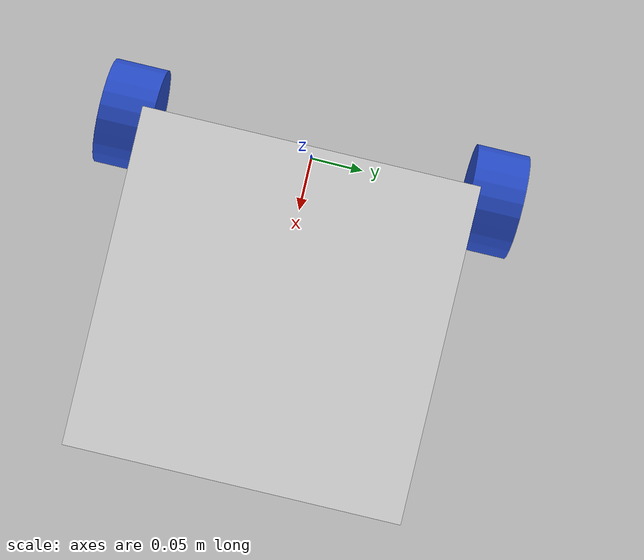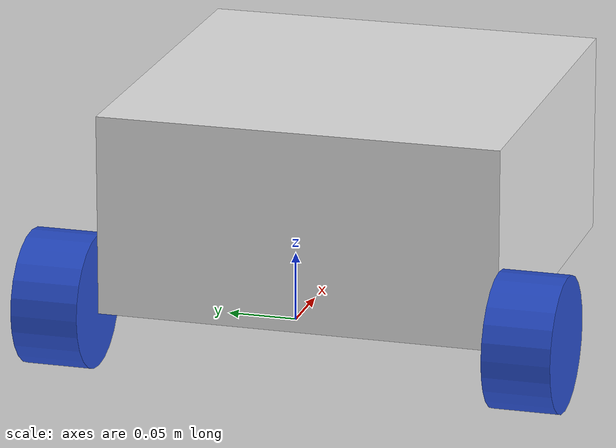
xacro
<?xml version="1.0"?>
<robot xmlns:xacro="http://www.ros.org/wiki/xacro">

    <xacro:property name="chassis_length" value="0.3"/>
    <xacro:property name="chassis_width" value="0.3"/>
    <xacro:property name="chassis_height" value="0.15"/>
    <xacro:property name="chassis_mass" value="1.0"/>
    <xacro:property name="wheel_radius" value="0.05"/>
    <xacro:property name="wheel_thickness" value="0.05"/>
    <xacro:property name="wheel_mass" value="0.05"/>
    <xacro:property name="wheel_offset_x" value="0.0"/>
    <xacro:property name="wheel_offset_y" value="0.175"/>
    <xacro:property name="wheel_offset_z" value="0.01"/>
    <xacro:property name="caster_wheel_radius" value="0.02"/>
    <xacro:property name="caster_wheel_mass" value="0.01"/>
    <xacro:property name="caster_wheel_offset_x" value="0.25"/>
    <xacro:property name="caster_wheel_offset_z" value="${wheel_offset_z - wheel_radius + caster_wheel_radius}"/>

    <link name="base_link">   </link>

    <joint name="chassis_joint" type="fixed">
        <parent link="base_link"/>
        <child link="chassis"/>
         <origin xyz="${-wheel_offset_x} 0 ${-wheel_offset_z}"/>
    </joint>

     <link name="chassis">
        <visual>
            <origin xyz="${chassis_length/2} 0 ${chassis_height/2}"/>
            <geometry>
                <box size="${chassis_length} ${chassis_width} ${chassis_height}"/>
            </geometry>
            <material name="white"/>
        </visual>
        <collision>
            <origin xyz="${chassis_length/2} 0 ${chassis_height/2}"/>
            <geometry>
                <box size="${chassis_length} ${chassis_width} ${chassis_height}"/>
            </geometry>
        </collision>
        <xacro:inertial_box mass="0.5" x="${chassis_length}" y="${chassis_width}" z="${chassis_height}">
            <origin xyz="${chassis_length/2} 0 ${chassis_height/2}" rpy="0 0 0"/>
        </xacro:inertial_box>
    </link>
    <gazebo reference="chassis">
        <material>Gazebo/White</material>
    </gazebo>

    <!-- LEFT WHEEL -->

    <joint name="left_wheel_joint" type="continuous">
        <parent link="base_link"/>
        <child link="left_wheel"/>
        <origin xyz="0 ${wheel_offset_y} 0" rpy="-${pi/2} 0 0" />
        <axis xyz="0 0 1"/>
    </joint>

    <link name="left_wheel">
        <visual>
            <geometry>
                <cylinder radius="${wheel_radius}" length="${wheel_thickness}"/>
            </geometry>
            <material name="blue"/>
        </visual>
        <collision>
            <geometry>
                <sphere radius="${wheel_radius}"/>
            </geometry>
        </collision>
        <xacro:inertial_cylinder mass="${wheel_mass}" length="${wheel_thickness}" radius="${wheel_radius}">
            <origin xyz="0 0 0" rpy="0 0 0"/>
        </xacro:inertial_cylinder>
    </link>
    <gazebo reference="left_wheel">
        <material>Gazebo/Blue</material>
    </gazebo>
    <!-- RIGHT WHEEL -->

    <joint name="right_wheel_joint" type="continuous">
        <parent link="base_link"/>
        <child link="right_wheel"/>
        <origin xyz="0 ${-wheel_offset_y} 0" rpy="${pi/2} 0 0" />
        <axis xyz="0 0 -1"/>
    </joint>

    <link name="right_wheel">
        <visual>
            <geometry>
                <cylinder radius="${wheel_radius}" length="${wheel_thickness}"/>
            </geometry>
            <material name="blue"/>
        </visual>
        <collision>
            <geometry>
                <sphere radius="${wheel_radius}"/>
            </geometry>
        </collision>
        <xacro:inertial_cylinder mass="${wheel_mass}" length="${wheel_thickness}" radius="${wheel_radius}">
            <origin xyz="0 0 0" rpy="0 0 0"/>
        </xacro:inertial_cylinder>
    </link>
    <gazebo reference="right_wheel">
        <material>Gazebo/Blue</material>
    </gazebo>
<!-- CASTER WHEEL -->

    <joint name="caster_wheel_joint" type="fixed">
        <parent link="chassis"/>
        <child link="caster_wheel"/>
        <origin xyz="${caster_wheel_offset_x} 0 ${caster_wheel_offset_z}"/>
    </joint>

    <link name="caster_wheel">
        <visual>
            <geometry>
                <sphere radius="${caster_wheel_radius}"/>
            </geometry>
            <material name="black"/>
        </visual>
        <collision>
            <geometry>
                <sphere radius="${caster_wheel_radius}"/>
            </geometry>
        </collision>
        <xacro:inertial_sphere mass="${caster_wheel_mass}" radius="${caster_wheel_radius}">
            <origin xyz="0 0 0" rpy="0 0 0"/>
        </xacro:inertial_sphere>
    </link>
    <gazebo reference="caster_wheel">
        <material>Gazebo/Black</material>
         <mu1 value="0.001"/>
         <mu2 value="0.001"/>
    </gazebo>
</robot>
